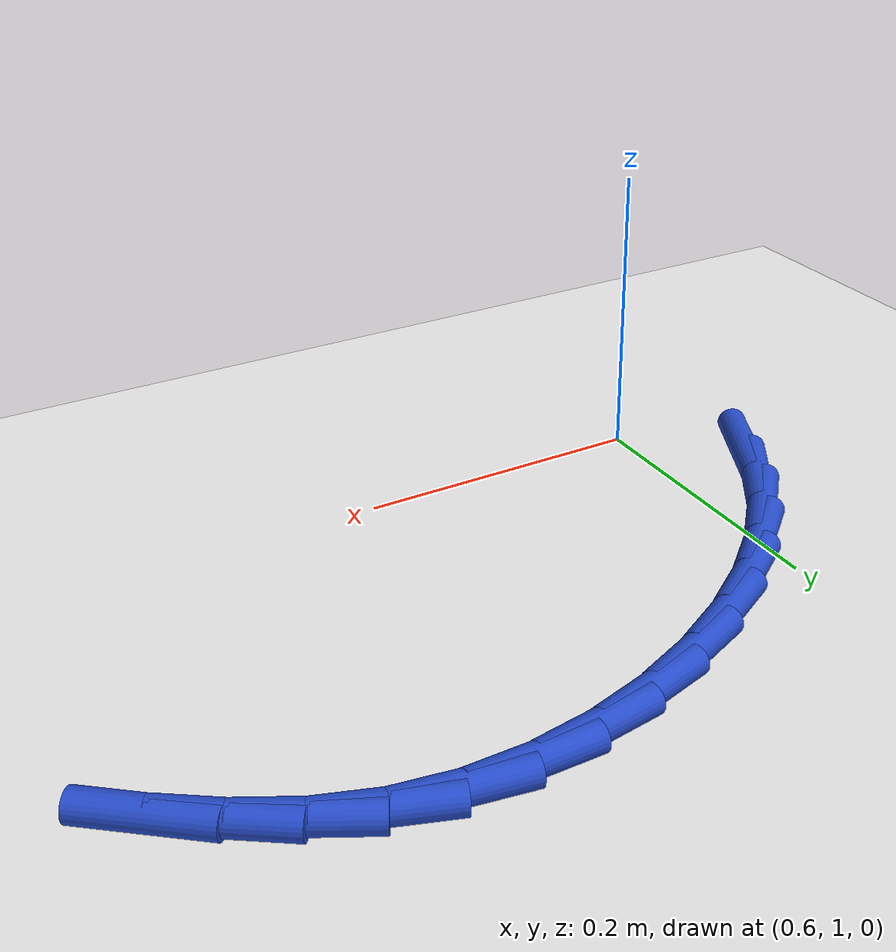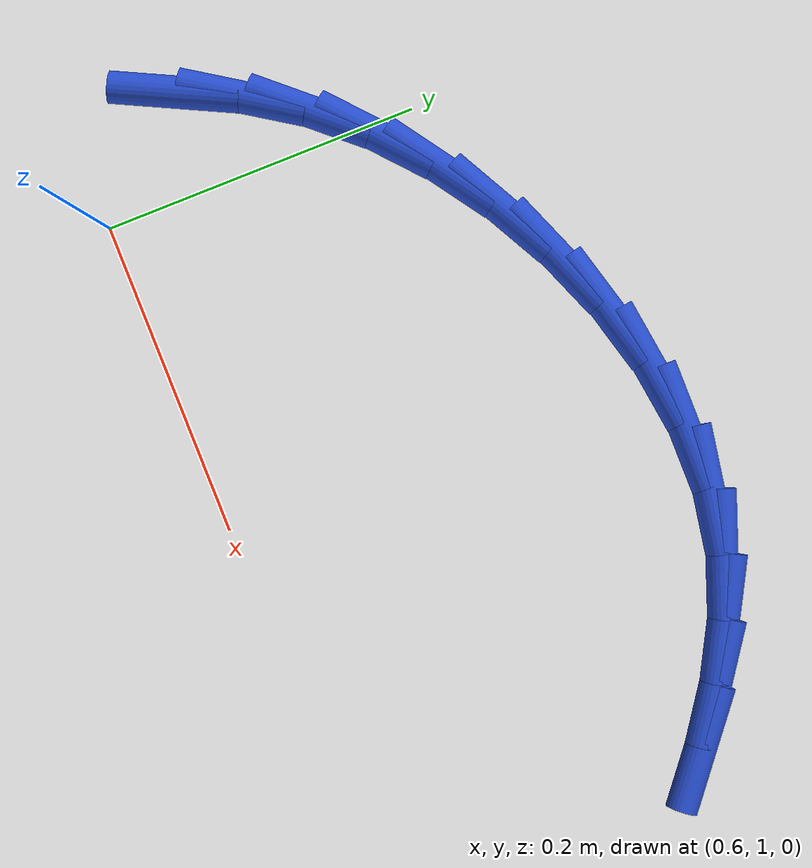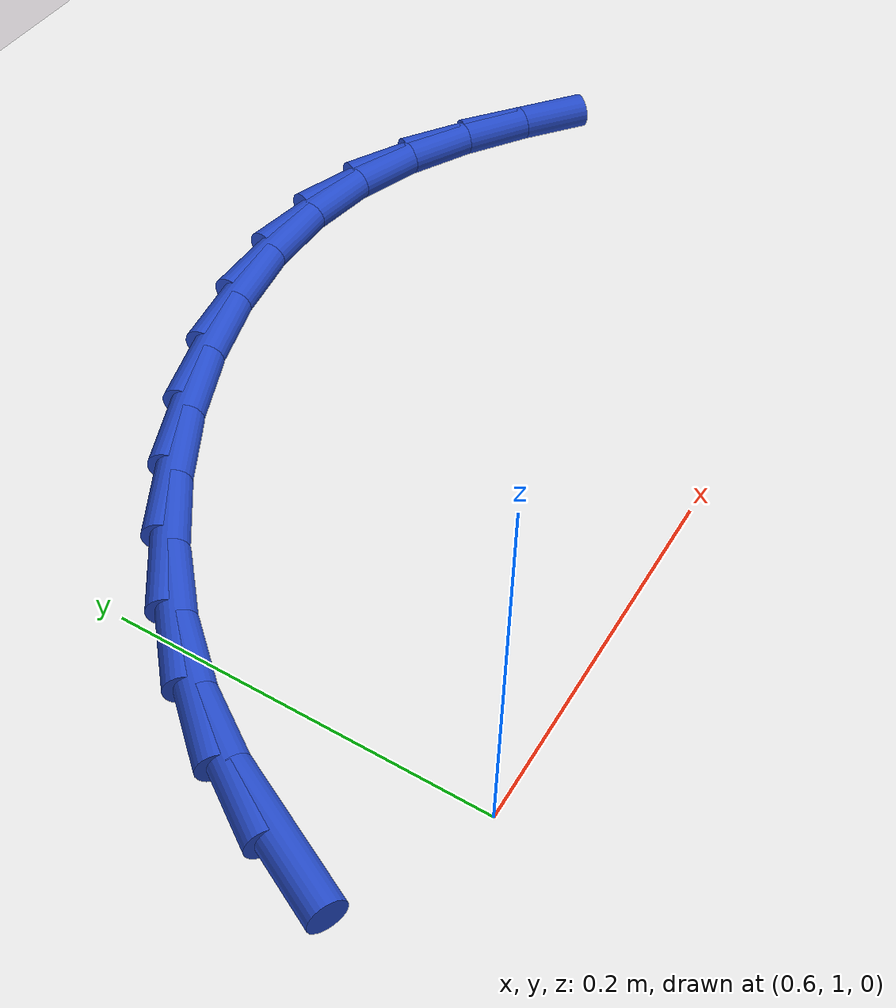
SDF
<sdf version="1.6">
 <world name="default">
  <model name="ground_plane">
   <static>1</static>
   <link name="link">
    <collision name="collision">
     <geometry><plane><normal>0 0 1</normal><size>100 100</size></plane></geometry>
     <surface><friction><ode><mu>100</mu><mu2>50</mu2></ode></friction></surface>
    </collision>
    <visual name="visual">
     <cast_shadows>0</cast_shadows>
     <geometry><plane><normal>0 0 1</normal><size>100 100</size></plane></geometry>
     <material>
      <script><uri>file://media/materials/scripts/gazebo.material</uri><name>Gazebo/WhiteGlow</name></script>
     </material>
    </visual>
   </link>
  </model>
  <model name="line">
   <link name="link_30">
    <pose>0.5387794070826591 1.0686925667011087 0.01 0 1.57 1.118004081680076</pose>
    <collision name="collision">
     <geometry><cylinder><radius>0.01</radius><length>0.08</length></cylinder></geometry>
    </collision>
    <visual name="visual">
     <material>
      <script><name>Gazebo/Blue</name><uri>file://media/materials/scripts/gazebo.material</uri></script>
     </material>
     <geometry><cylinder><radius>0.01</radius><length>0.08</length></cylinder></geometry>
    </visual>
   </link>
   <link name="link_31">
    <pose>0.5568319728569857 1.1057993193696338 0.01 0 1.57 0.9895973113790022</pose>
    <collision name="collision">
     <geometry><cylinder><radius>0.01</radius><length>0.08</length></cylinder></geometry>
    </collision>
    <visual name="visual">
     <material>
      <script><name>Gazebo/Blue</name><uri>file://media/materials/scripts/gazebo.material</uri></script>
     </material>
     <geometry><cylinder><radius>0.01</radius><length>0.08</length></cylinder></geometry>
    </visual>
   </link>
   <link name="link_32">
    <pose>0.579787966241789 1.1407461462083541 0.01 0 1.57 0.8490300604744137</pose>
    <collision name="collision">
     <geometry><cylinder><radius>0.01</radius><length>0.08</length></cylinder></geometry>
    </collision>
    <visual name="visual">
     <material>
      <script><name>Gazebo/Blue</name><uri>file://media/materials/scripts/gazebo.material</uri></script>
     </material>
     <geometry><cylinder><radius>0.01</radius><length>0.08</length></cylinder></geometry>
    </visual>
   </link>
   <link name="link_33">
    <pose>0.608164850456559 1.1729853621619197 0.01 0 1.57 0.7215480919830476</pose>
    <collision name="collision">
     <geometry><cylinder><radius>0.01</radius><length>0.08</length></cylinder></geometry>
    </collision>
    <visual name="visual">
     <material>
      <script><name>Gazebo/Blue</name><uri>file://media/materials/scripts/gazebo.material</uri></script>
     </material>
     <geometry><cylinder><radius>0.01</radius><length>0.08</length></cylinder></geometry>
    </visual>
   </link>
   <link name="link_34">
    <pose>0.6411763195999719 1.2020292021352388 0.01 0 1.57 0.6046207540081676</pose>
    <collision name="collision">
     <geometry><cylinder><radius>0.01</radius><length>0.08</length></cylinder></geometry>
    </collision>
    <visual name="visual">
     <material>
      <script><name>Gazebo/Blue</name><uri>file://media/materials/scripts/gazebo.material</uri></script>
     </material>
     <geometry><cylinder><radius>0.01</radius><length>0.08</length></cylinder></geometry>
    </visual>
   </link>
   <link name="link_35">
    <pose>0.6778905350938581 1.22739658957345 0.01 0 1.57 0.49293241044690883</pose>
    <collision name="collision">
     <geometry><cylinder><radius>0.01</radius><length>0.08</length></cylinder></geometry>
    </collision>
    <visual name="visual">
     <material>
      <script><name>Gazebo/Blue</name><uri>file://media/materials/scripts/gazebo.material</uri></script>
     </material>
     <geometry><cylinder><radius>0.01</radius><length>0.08</length></cylinder></geometry>
    </visual>
   </link>
   <link name="link_36">
    <pose>0.717375658360046 1.2486064479216898 0.01 0 1.57 0.38137339220141653</pose>
    <collision name="collision">
     <geometry><cylinder><radius>0.01</radius><length>0.08</length></cylinder></geometry>
    </collision>
    <visual name="visual">
     <material>
      <script><name>Gazebo/Blue</name><uri>file://media/materials/scripts/gazebo.material</uri></script>
     </material>
     <geometry><cylinder><radius>0.01</radius><length>0.08</length></cylinder></geometry>
    </visual>
   </link>
   <link name="link_37">
    <pose>0.7586998508203648 1.2651777006250964 0.01 0 1.57 0.26479485804835917</pose>
    <collision name="collision">
     <geometry><cylinder><radius>0.01</radius><length>0.08</length></cylinder></geometry>
    </collision>
    <visual name="visual">
     <material>
      <script><name>Gazebo/Blue</name><uri>file://media/materials/scripts/gazebo.material</uri></script>
     </material>
     <geometry><cylinder><radius>0.01</radius><length>0.08</length></cylinder></geometry>
    </visual>
   </link>
   <link name="link_38">
    <pose>0.8009312738966439 1.2766292711288068 0.01 0 1.57 0.13774460908547448</pose>
    <collision name="collision">
     <geometry><cylinder><radius>0.01</radius><length>0.08</length></cylinder></geometry>
    </collision>
    <visual name="visual">
     <material>
      <script><name>Gazebo/Blue</name><uri>file://media/materials/scripts/gazebo.material</uri></script>
     </material>
     <geometry><cylinder><radius>0.01</radius><length>0.08</length></cylinder></geometry>
    </visual>
   </link>
   <link name="link_39">
    <pose>0.8431380890107123 1.2824800828779594 0.01 0 1.57 -0.005600462562805353</pose>
    <collision name="collision">
     <geometry><cylinder><radius>0.01</radius><length>0.08</length></cylinder></geometry>
    </collision>
    <visual name="visual">
     <material>
      <script><name>Gazebo/Blue</name><uri>file://media/materials/scripts/gazebo.material</uri></script>
     </material>
     <geometry><cylinder><radius>0.01</radius><length>0.08</length></cylinder></geometry>
    </visual>
   </link>
   <link name="link_40">
    <pose>0.8843884575843992 1.2822490593176903 0.01 0 1.57 -0.17090499398291586</pose>
    <collision name="collision">
     <geometry><cylinder><radius>0.01</radius><length>0.08</length></cylinder></geometry>
    </collision>
    <visual name="visual">
     <material>
      <script><name>Gazebo/Blue</name><uri>file://media/materials/scripts/gazebo.material</uri></script>
     </material>
     <geometry><cylinder><radius>0.01</radius><length>0.08</length></cylinder></geometry>
    </visual>
   </link>
   <link name="link_41">
    <pose>0.923750896451844 1.2754555500077551 0.01 0 1.57 -0.3490179393192631</pose>
    <collision name="collision">
     <geometry><cylinder><radius>0.01</radius><length>0.08</length></cylinder></geometry>
    </collision>
    <visual name="visual">
     <material>
      <script><name>Gazebo/Blue</name><uri>file://media/materials/scripts/gazebo.material</uri></script>
     </material>
     <geometry><cylinder><radius>0.01</radius><length>0.08</length></cylinder></geometry>
    </visual>
   </link>
   <link name="link_42">
    <pose>0.9606382010026505 1.2620316705279229 0.01 0 1.57 -0.498248297932133</pose>
    <collision name="collision">
     <geometry><cylinder><radius>0.01</radius><length>0.08</length></cylinder></geometry>
    </collision>
    <visual name="visual">
     <material>
      <script><name>Gazebo/Blue</name><uri>file://media/materials/scripts/gazebo.material</uri></script>
     </material>
     <geometry><cylinder><radius>0.01</radius><length>0.08</length></cylinder></geometry>
    </visual>
   </link>
   <link name="link_43">
    <pose>0.9954501839415857 1.243092901504668 0.01 0 1.57 -0.6068649200676309</pose>
    <collision name="collision">
     <geometry><cylinder><radius>0.01</radius><length>0.08</length></cylinder></geometry>
    </collision>
    <visual name="visual">
     <material>
      <script><name>Gazebo/Blue</name><uri>file://media/materials/scripts/gazebo.material</uri></script>
     </material>
     <geometry><cylinder><radius>0.01</radius><length>0.08</length></cylinder></geometry>
    </visual>
   </link>
   <link name="link_44">
    <pose>1.0287624276467986 1.219965459166115 0.01 0 1.57 -0.6762345465372139</pose>
    <collision name="collision">
     <geometry><cylinder><radius>0.01</radius><length>0.08</length></cylinder></geometry>
    </collision>
    <visual name="visual">
     <material>
      <script><name>Gazebo/Blue</name><uri>file://media/materials/scripts/gazebo.material</uri></script>
     </material>
     <geometry><cylinder><radius>0.01</radius><length>0.08</length></cylinder></geometry>
    </visual>
   </link>
  </model>
 </world>
</sdf>
